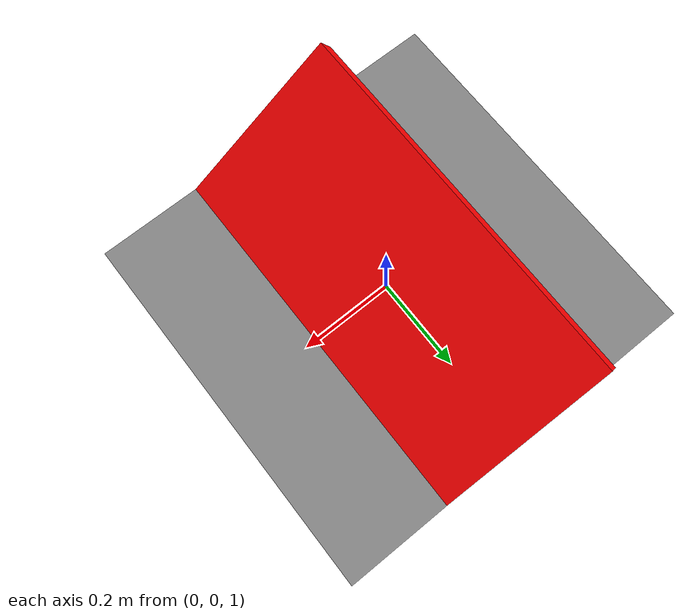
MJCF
<mujoco>
    <worldbody>
        <!-- Base of the ramp -->
        <body name="base" pos="0 0 1">
            <geom type="box" size="0.4 0.4 0.02" rgba="0.5 0.5 0.5 1"/>
        </body>

        <!-- Ramp surface -->
        <body name="ramp" pos="0 0 1.1" euler="0 30 0">
            <geom type="box" size="0.2 0.4 0.02" rgba="1 0 0 1"/>
        </body>
    </worldbody>
</mujoco>
